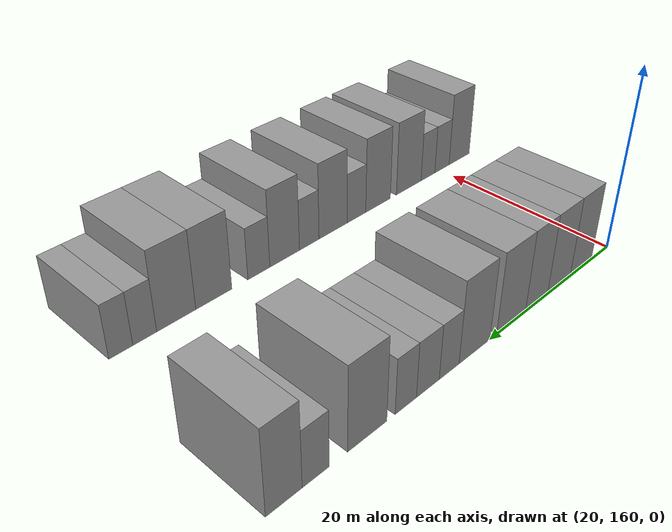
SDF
<sdf version="1.6">
 <world name="default">
  <model name="building_83">
   <static>1</static>
   <pose>25.0000 164.9916 0 0.000000 0.000000 0.000000</pose>
   <link name="link">
    <pose>0 0 4.50 0 0 0</pose>
    <collision name="collision"><geometry><box><size>10.0000 3.8529 9.0000</size></box></geometry></collision>
    <visual name="visual">
     <cast_shadows>0</cast_shadows>
     <geometry><box><size>10.0000 3.8529 9.0000</size></box></geometry>
     <material>
      <script>
       <uri>model://grey_wall/materials/scripts</uri>
       <uri>model://grey_wall/materials/textures</uri>
       <name>vrc/grey_wall</name>
      </script>
     </material>
    </visual>
   </link>
  </model>
  <model name="building_84">
   <static>1</static>
   <pose>25.0000 168.8767 0 0.000000 0.000000 0.000000</pose>
   <link name="link">
    <pose>0 0 4.50 0 0 0</pose>
    <collision name="collision"><geometry><box><size>10.0000 3.9171 9.0000</size></box></geometry></collision>
    <visual name="visual">
     <cast_shadows>0</cast_shadows>
     <geometry><box><size>10.0000 3.9171 9.0000</size></box></geometry>
     <material>
      <script>
       <uri>model://grey_wall/materials/scripts</uri>
       <uri>model://grey_wall/materials/textures</uri>
       <name>vrc/grey_wall</name>
      </script>
     </material>
    </visual>
   </link>
  </model>
  <model name="building_85">
   <static>1</static>
   <pose>25.0000 172.6451 0 0.000000 0.000000 0.000000</pose>
   <link name="link">
    <pose>0 0 4.50 0 0 0</pose>
    <collision name="collision"><geometry><box><size>10.0000 3.6197 9.0000</size></box></geometry></collision>
    <visual name="visual">
     <cast_shadows>0</cast_shadows>
     <geometry><box><size>10.0000 3.6197 9.0000</size></box></geometry>
     <material>
      <script>
       <uri>model://grey_wall/materials/scripts</uri>
       <uri>model://grey_wall/materials/textures</uri>
       <name>vrc/grey_wall</name>
      </script>
     </material>
    </visual>
   </link>
  </model>
  <model name="building_86">
   <static>1</static>
   <pose>25.0000 176.6981 0 0.000000 0.000000 0.000000</pose>
   <link name="link">
    <pose>0 0 4.50 0 0 0</pose>
    <collision name="collision"><geometry><box><size>10.0000 4.4865 9.0000</size></box></geometry></collision>
    <visual name="visual">
     <cast_shadows>0</cast_shadows>
     <geometry><box><size>10.0000 4.4865 9.0000</size></box></geometry>
     <material>
      <script>
       <uri>model://grey_wall/materials/scripts</uri>
       <uri>model://grey_wall/materials/textures</uri>
       <name>vrc/grey_wall</name>
      </script>
     </material>
    </visual>
   </link>
  </model>
  <model name="building_87">
   <static>1</static>
   <pose>25.0000 182.1515 0 0.000000 0.000000 0.000000</pose>
   <link name="link">
    <pose>0 0 4.50 0 0 0</pose>
    <collision name="collision"><geometry><box><size>10.0000 4.4203 9.0000</size></box></geometry></collision>
    <visual name="visual">
     <cast_shadows>0</cast_shadows>
     <geometry><box><size>10.0000 4.4203 9.0000</size></box></geometry>
     <material>
      <script>
       <uri>model://grey_wall/materials/scripts</uri>
       <uri>model://grey_wall/materials/textures</uri>
       <name>vrc/grey_wall</name>
      </script>
     </material>
    </visual>
   </link>
  </model>
  <model name="building_88">
   <static>1</static>
   <pose>25.0000 185.6992 0 0.000000 0.000000 0.000000</pose>
   <link name="link">
    <pose>0 0 3.00 0 0 0</pose>
    <collision name="collision"><geometry><box><size>10.0000 2.6751 6.0000</size></box></geometry></collision>
    <visual name="visual">
     <cast_shadows>0</cast_shadows>
     <geometry><box><size>10.0000 2.6751 6.0000</size></box></geometry>
     <material>
      <script>
       <uri>model://grey_wall/materials/scripts</uri>
       <uri>model://grey_wall/materials/textures</uri>
       <name>vrc/grey_wall</name>
      </script>
     </material>
    </visual>
   </link>
  </model>
  <model name="building_89">
   <static>1</static>
   <pose>25.0000 188.5170 0 0.000000 0.000000 0.000000</pose>
   <link name="link">
    <pose>0 0 3.00 0 0 0</pose>
    <collision name="collision"><geometry><box><size>10.0000 2.9605 6.0000</size></box></geometry></collision>
    <visual name="visual">
     <cast_shadows>0</cast_shadows>
     <geometry><box><size>10.0000 2.9605 6.0000</size></box></geometry>
     <material>
      <script>
       <uri>model://grey_wall/materials/scripts</uri>
       <uri>model://grey_wall/materials/textures</uri>
       <name>vrc/grey_wall</name>
      </script>
     </material>
    </visual>
   </link>
  </model>
  <model name="building_90">
   <static>1</static>
   <pose>25.0000 191.3114 0 0.000000 0.000000 0.000000</pose>
   <link name="link">
    <pose>0 0 3.00 0 0 0</pose>
    <collision name="collision"><geometry><box><size>10.0000 2.6284 6.0000</size></box></geometry></collision>
    <visual name="visual">
     <cast_shadows>0</cast_shadows>
     <geometry><box><size>10.0000 2.6284 6.0000</size></box></geometry>
     <material>
      <script>
       <uri>model://grey_wall/materials/scripts</uri>
       <uri>model://grey_wall/materials/textures</uri>
       <name>vrc/grey_wall</name>
      </script>
     </material>
    </visual>
   </link>
  </model>
  <model name="building_91">
   <static>1</static>
   <pose>25.0000 195.8693 0 0.000000 0.000000 0.000000</pose>
   <link name="link">
    <pose>0 0 4.50 0 0 0</pose>
    <collision name="collision"><geometry><box><size>10.0000 4.4875 9.0000</size></box></geometry></collision>
    <visual name="visual">
     <cast_shadows>0</cast_shadows>
     <geometry><box><size>10.0000 4.4875 9.0000</size></box></geometry>
     <material>
      <script>
       <uri>model://grey_wall/materials/scripts</uri>
       <uri>model://grey_wall/materials/textures</uri>
       <name>vrc/grey_wall</name>
      </script>
     </material>
    </visual>
   </link>
  </model>
  <model name="building_92">
   <static>1</static>
   <pose>25.0000 201.5171 0 0.000000 0.000000 0.000000</pose>
   <link name="link">
    <pose>0 0 3.00 0 0 0</pose>
    <collision name="collision"><geometry><box><size>10.0000 2.8082 6.0000</size></box></geometry></collision>
    <visual name="visual">
     <cast_shadows>0</cast_shadows>
     <geometry><box><size>10.0000 2.8082 6.0000</size></box></geometry>
     <material>
      <script>
       <uri>model://grey_wall/materials/scripts</uri>
       <uri>model://grey_wall/materials/textures</uri>
       <name>vrc/grey_wall</name>
      </script>
     </material>
    </visual>
   </link>
  </model>
  <model name="building_93">
   <static>1</static>
   <pose>25.0000 204.7310 0 0.000000 0.000000 0.000000</pose>
   <link name="link">
    <pose>0 0 4.50 0 0 0</pose>
    <collision name="collision"><geometry><box><size>10.0000 3.6195 9.0000</size></box></geometry></collision>
    <visual name="visual">
     <cast_shadows>0</cast_shadows>
     <geometry><box><size>10.0000 3.6195 9.0000</size></box></geometry>
     <material>
      <script>
       <uri>model://grey_wall/materials/scripts</uri>
       <uri>model://grey_wall/materials/textures</uri>
       <name>vrc/grey_wall</name>
      </script>
     </material>
    </visual>
   </link>
  </model>
  <model name="building_184">
   <static>1</static>
   <pose>47.0000 156.3790 0 0.000000 0.000000 0.000000</pose>
   <link name="link">
    <pose>0 0 4.50 0 0 0</pose>
    <collision name="collision"><geometry><box><size>10.0000 3.8234 9.0000</size></box></geometry></collision>
    <visual name="visual">
     <cast_shadows>0</cast_shadows>
     <geometry><box><size>10.0000 3.8234 9.0000</size></box></geometry>
     <material>
      <script>
       <uri>model://grey_wall/materials/scripts</uri>
       <uri>model://grey_wall/materials/textures</uri>
       <name>vrc/grey_wall</name>
      </script>
     </material>
    </visual>
   </link>
  </model>
  <model name="building_185">
   <static>1</static>
   <pose>47.0000 159.6015 0 0.000000 0.000000 0.000000</pose>
   <link name="link">
    <pose>0 0 3.00 0 0 0</pose>
    <collision name="collision"><geometry><box><size>10.0000 2.6217 6.0000</size></box></geometry></collision>
    <visual name="visual">
     <cast_shadows>0</cast_shadows>
     <geometry><box><size>10.0000 2.6217 6.0000</size></box></geometry>
     <material>
      <script>
       <uri>model://grey_wall/materials/scripts</uri>
       <uri>model://grey_wall/materials/textures</uri>
       <name>vrc/grey_wall</name>
      </script>
     </material>
    </visual>
   </link>
  </model>
  <model name="building_186">
   <static>1</static>
   <pose>47.0000 162.1416 0 0.000000 0.000000 0.000000</pose>
   <link name="link">
    <pose>0 0 3.00 0 0 0</pose>
    <collision name="collision"><geometry><box><size>10.0000 2.4584 6.0000</size></box></geometry></collision>
    <visual name="visual">
     <cast_shadows>0</cast_shadows>
     <geometry><box><size>10.0000 2.4584 6.0000</size></box></geometry>
     <material>
      <script>
       <uri>model://grey_wall/materials/scripts</uri>
       <uri>model://grey_wall/materials/textures</uri>
       <name>vrc/grey_wall</name>
      </script>
     </material>
    </visual>
   </link>
  </model>
  <model name="building_187">
   <static>1</static>
   <pose>47.0000 165.5050 0 0.000000 0.000000 0.000000</pose>
   <link name="link">
    <pose>0 0 4.50 0 0 0</pose>
    <collision name="collision"><geometry><box><size>10.0000 4.2683 9.0000</size></box></geometry></collision>
    <visual name="visual">
     <cast_shadows>0</cast_shadows>
     <geometry><box><size>10.0000 4.2683 9.0000</size></box></geometry>
     <material>
      <script>
       <uri>model://grey_wall/materials/scripts</uri>
       <uri>model://grey_wall/materials/textures</uri>
       <name>vrc/grey_wall</name>
      </script>
     </material>
    </visual>
   </link>
  </model>
  <model name="building_188">
   <static>1</static>
   <pose>47.0000 170.6313 0 0.000000 0.000000 0.000000</pose>
   <link name="link">
    <pose>0 0 4.50 0 0 0</pose>
    <collision name="collision"><geometry><box><size>10.0000 3.9843 9.0000</size></box></geometry></collision>
    <visual name="visual">
     <cast_shadows>0</cast_shadows>
     <geometry><box><size>10.0000 3.9843 9.0000</size></box></geometry>
     <material>
      <script>
       <uri>model://grey_wall/materials/scripts</uri>
       <uri>model://grey_wall/materials/textures</uri>
       <name>vrc/grey_wall</name>
      </script>
     </material>
    </visual>
   </link>
  </model>
  <model name="building_189">
   <static>1</static>
   <pose>47.0000 174.0803 0 0.000000 0.000000 0.000000</pose>
   <link name="link">
    <pose>0 0 3.00 0 0 0</pose>
    <collision name="collision"><geometry><box><size>10.0000 2.9135 6.0000</size></box></geometry></collision>
    <visual name="visual">
     <cast_shadows>0</cast_shadows>
     <geometry><box><size>10.0000 2.9135 6.0000</size></box></geometry>
     <material>
      <script>
       <uri>model://grey_wall/materials/scripts</uri>
       <uri>model://grey_wall/materials/textures</uri>
       <name>vrc/grey_wall</name>
      </script>
     </material>
    </visual>
   </link>
  </model>
  <model name="building_190">
   <static>1</static>
   <pose>47.0000 177.6148 0 0.000000 0.000000 0.000000</pose>
   <link name="link">
    <pose>0 0 4.50 0 0 0</pose>
    <collision name="collision"><geometry><box><size>10.0000 4.1556 9.0000</size></box></geometry></collision>
    <visual name="visual">
     <cast_shadows>0</cast_shadows>
     <geometry><box><size>10.0000 4.1556 9.0000</size></box></geometry>
     <material>
      <script>
       <uri>model://grey_wall/materials/scripts</uri>
       <uri>model://grey_wall/materials/textures</uri>
       <name>vrc/grey_wall</name>
      </script>
     </material>
    </visual>
   </link>
  </model>
  <model name="building_191">
   <static>1</static>
   <pose>47.0000 181.0767 0 0.000000 0.000000 0.000000</pose>
   <link name="link">
    <pose>0 0 3.00 0 0 0</pose>
    <collision name="collision"><geometry><box><size>10.0000 2.7682 6.0000</size></box></geometry></collision>
    <visual name="visual">
     <cast_shadows>0</cast_shadows>
     <geometry><box><size>10.0000 2.7682 6.0000</size></box></geometry>
     <material>
      <script>
       <uri>model://grey_wall/materials/scripts</uri>
       <uri>model://grey_wall/materials/textures</uri>
       <name>vrc/grey_wall</name>
      </script>
     </material>
    </visual>
   </link>
  </model>
  <model name="building_192">
   <static>1</static>
   <pose>47.0000 184.4763 0 0.000000 0.000000 0.000000</pose>
   <link name="link">
    <pose>0 0 4.50 0 0 0</pose>
    <collision name="collision"><geometry><box><size>10.0000 4.0310 9.0000</size></box></geometry></collision>
    <visual name="visual">
     <cast_shadows>0</cast_shadows>
     <geometry><box><size>10.0000 4.0310 9.0000</size></box></geometry>
     <material>
      <script>
       <uri>model://grey_wall/materials/scripts</uri>
       <uri>model://grey_wall/materials/textures</uri>
       <name>vrc/grey_wall</name>
      </script>
     </material>
    </visual>
   </link>
  </model>
  <model name="building_193">
   <static>1</static>
   <pose>47.0000 187.9184 0 0.000000 0.000000 0.000000</pose>
   <link name="link">
    <pose>0 0 3.00 0 0 0</pose>
    <collision name="collision"><geometry><box><size>10.0000 2.8533 6.0000</size></box></geometry></collision>
    <visual name="visual">
     <cast_shadows>0</cast_shadows>
     <geometry><box><size>10.0000 2.8533 6.0000</size></box></geometry>
     <material>
      <script>
       <uri>model://grey_wall/materials/scripts</uri>
       <uri>model://grey_wall/materials/textures</uri>
       <name>vrc/grey_wall</name>
      </script>
     </material>
    </visual>
   </link>
  </model>
  <model name="building_194">
   <static>1</static>
   <pose>47.0000 193.5142 0 0.000000 0.000000 0.000000</pose>
   <link name="link">
    <pose>0 0 4.50 0 0 0</pose>
    <collision name="collision"><geometry><box><size>10.0000 4.3382 9.0000</size></box></geometry></collision>
    <visual name="visual">
     <cast_shadows>0</cast_shadows>
     <geometry><box><size>10.0000 4.3382 9.0000</size></box></geometry>
     <material>
      <script>
       <uri>model://grey_wall/materials/scripts</uri>
       <uri>model://grey_wall/materials/textures</uri>
       <name>vrc/grey_wall</name>
      </script>
     </material>
    </visual>
   </link>
  </model>
  <model name="building_195">
   <static>1</static>
   <pose>47.0000 197.8877 0 0.000000 0.000000 0.000000</pose>
   <link name="link">
    <pose>0 0 4.50 0 0 0</pose>
    <collision name="collision"><geometry><box><size>10.0000 4.4089 9.0000</size></box></geometry></collision>
    <visual name="visual">
     <cast_shadows>0</cast_shadows>
     <geometry><box><size>10.0000 4.4089 9.0000</size></box></geometry>
     <material>
      <script>
       <uri>model://grey_wall/materials/scripts</uri>
       <uri>model://grey_wall/materials/textures</uri>
       <name>vrc/grey_wall</name>
      </script>
     </material>
    </visual>
   </link>
  </model>
  <model name="building_196">
   <static>1</static>
   <pose>47.0000 201.3715 0 0.000000 0.000000 0.000000</pose>
   <link name="link">
    <pose>0 0 3.00 0 0 0</pose>
    <collision name="collision"><geometry><box><size>10.0000 2.5589 6.0000</size></box></geometry></collision>
    <visual name="visual">
     <cast_shadows>0</cast_shadows>
     <geometry><box><size>10.0000 2.5589 6.0000</size></box></geometry>
     <material>
      <script>
       <uri>model://grey_wall/materials/scripts</uri>
       <uri>model://grey_wall/materials/textures</uri>
       <name>vrc/grey_wall</name>
      </script>
     </material>
    </visual>
   </link>
  </model>
  <model name="building_197">
   <static>1</static>
   <pose>47.0000 203.8907 0 0.000000 0.000000 0.000000</pose>
   <link name="link">
    <pose>0 0 3.00 0 0 0</pose>
    <collision name="collision"><geometry><box><size>10.0000 2.4794 6.0000</size></box></geometry></collision>
    <visual name="visual">
     <cast_shadows>0</cast_shadows>
     <geometry><box><size>10.0000 2.4794 6.0000</size></box></geometry>
     <material>
      <script>
       <uri>model://grey_wall/materials/scripts</uri>
       <uri>model://grey_wall/materials/textures</uri>
       <name>vrc/grey_wall</name>
      </script>
     </material>
    </visual>
   </link>
  </model>
 </world>
</sdf>
